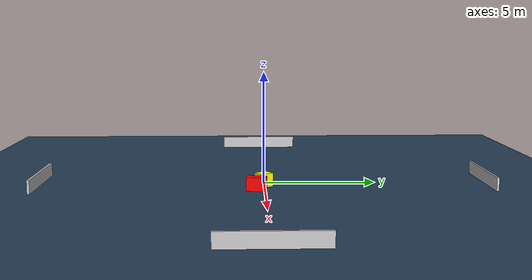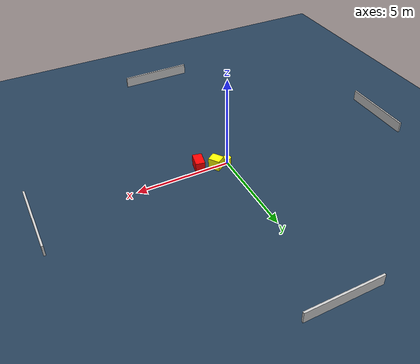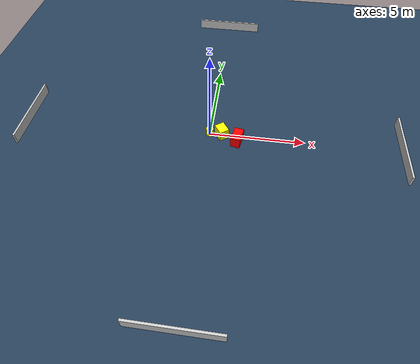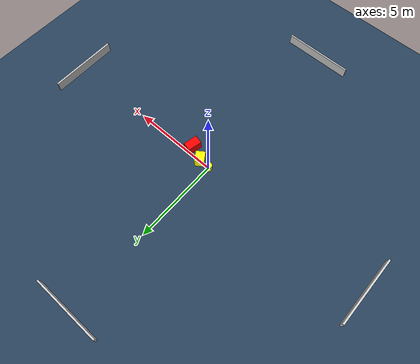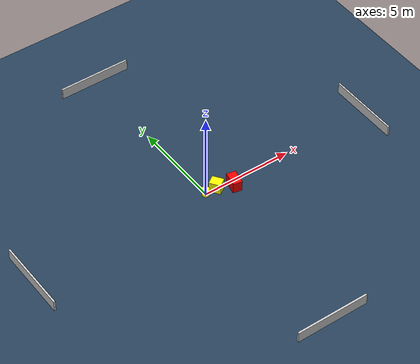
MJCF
<?xml version="1.0" ?>
<mujoco model="generated_environment">
  <option timestep="0.01" integrator="RK4" cone="elliptic"/>
  <default>
    <geom density="1"/>
  </default>
  <asset>
    <texture builtin="gradient" height="3072" name="skybox" rgb1="0.3 0.5 0.7" rgb2="0 0 0" type="skybox" width="512"/>
    <texture builtin="checker" height="300" name="groundplane" rgb1="0.2 0.3 0.4" rgb2="0.1 0.2 0.3" type="2d" width="300"/>
    <material name="groundplane" reflectance="0.2" texrepeat="5 5" texture="groundplane"/>
  </asset>
  <worldbody>
    <light dir="0 0 -1" directional="true" pos="0 0 1.5"/>
    <geom condim="3" friction="0.5 0.005 0.001" material="groundplane" name="floor" pos="0 0 0" size="0 0 0.05" type="plane"/>
    <body name="walls">
      <geom name="wall_1" condim="4" pos="-10.0 0.0 0.3" rgba="0.800000011920929 0.800000011920929 0.800000011920929 1.0" size="0.05 2.0 0.3" type="box"/>
      <geom name="wall_2" condim="4" pos="10.0 0.0 0.3" rgba="0.800000011920929 0.800000011920929 0.800000011920929 1.0" size="0.05 2.0 0.3" type="box"/>
      <geom name="wall_3" condim="4" pos="0.0 -10.0 0.3" rgba="0.800000011920929 0.800000011920929 0.800000011920929 1.0" size="2.0 0.05 0.3" type="box"/>
      <geom name="wall_4" condim="4" pos="0.0 10.0 0.3" rgba="0.800000011920929 0.800000011920929 0.800000011920929 1.0" size="2.0 0.05 0.3" type="box"/>
    </body>
    <body name="robot">
      <joint name="joint_x" type="slide" pos="0 0 0" axis="1 0 0"/>
      <joint name="joint_y" type="slide" pos="0 0 0" axis="0 1 0"/>
      <geom name="robot" type="cylinder" pos="0.0 0.0 0.2" size="0.2 0.2 0.0" mass="5.0" friction="1.0 0.005 0.0001" condim="4" rgba="1.0 1.0 0.0 1.0"/>
    </body>
    <body name="obstacle_1_movable">
      <geom name="obstacle_1_movable" condim="4" pos="0.6400735432434335 -0.021537652151184507 0.3" euler="0 0 34.630061902124716" friction="0.0 0.005 0.001" rgba="1.0 1.0 0.0 1.0" size="0.26547593133167313 0.3152845544318045 0.3" type="box" mass="0.1"/>
      <joint type="free"/>
    </body>
    <body name="obstacle_2_static">
      <geom name="obstacle_2_static" condim="4" pos="1.4857615722991346 -0.35476222751568903 0.3" euler="0 0 348.35287391438203" friction="0.0 0.005 0.001" rgba="1.0 0.0 0.0 1.0" size="0.24888983798405478 0.40870929806072276 0.3" type="box"/>
    </body>
  </worldbody>
  <actuator>
    <motor name="actuator_x" joint="joint_x" gear="1" ctrlrange="-1 1"/>
    <motor name="actuator_y" joint="joint_y" gear="1" ctrlrange="-1 1"/>
  </actuator>
</mujoco>
